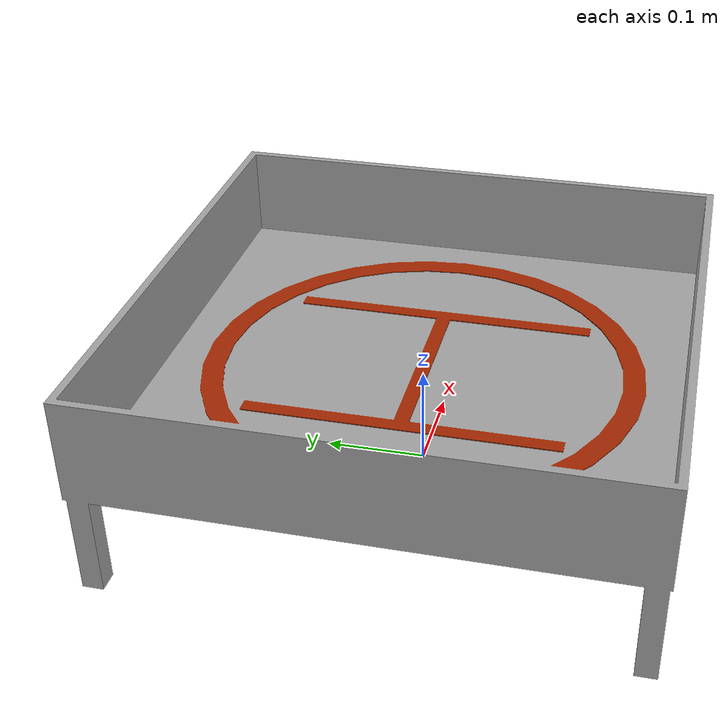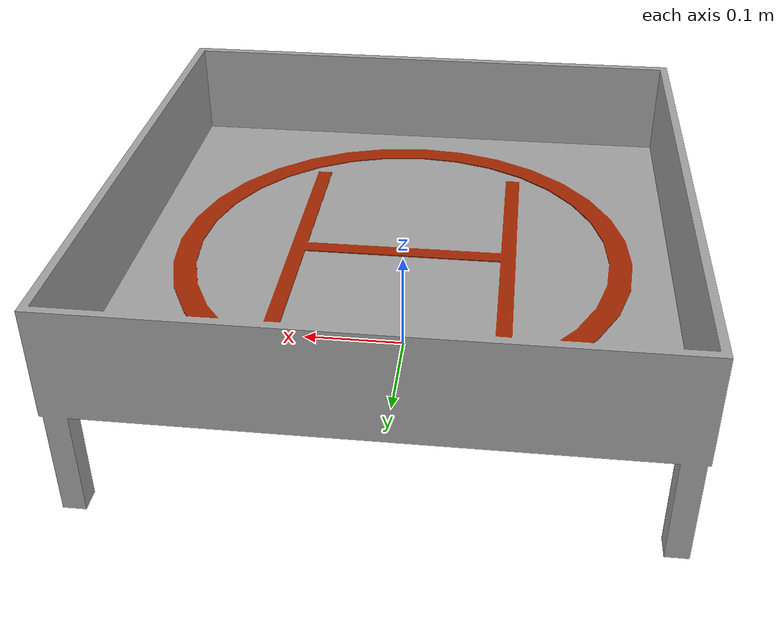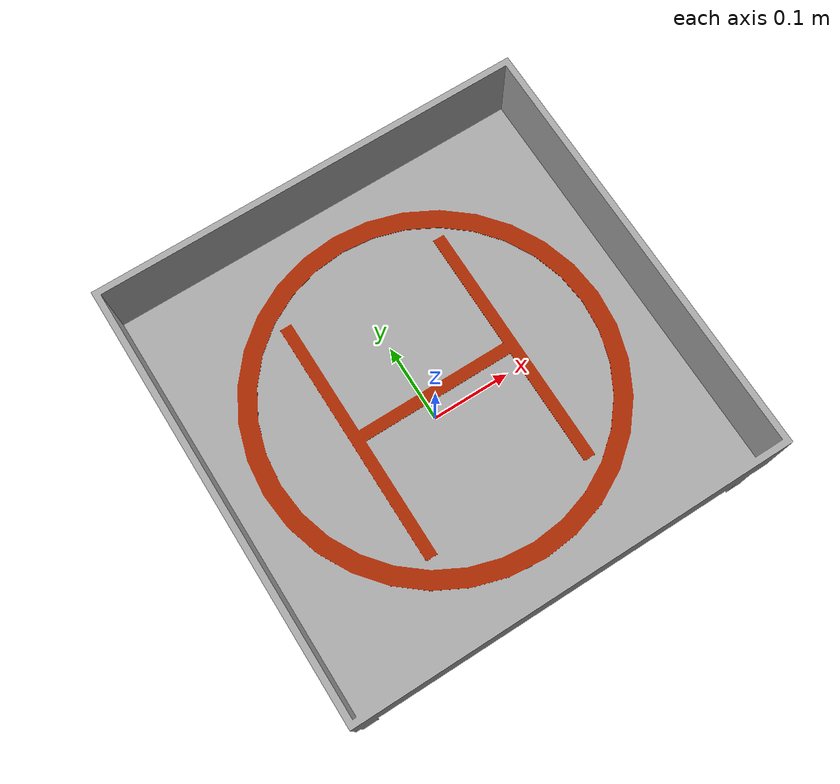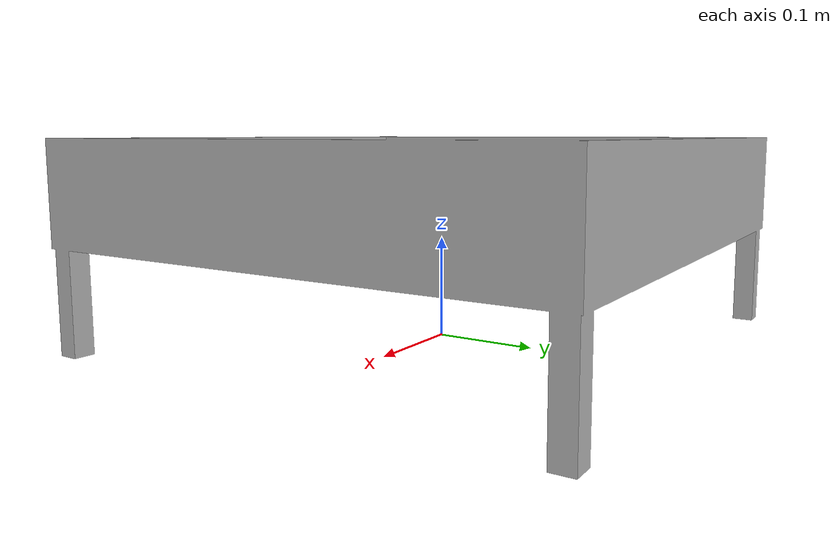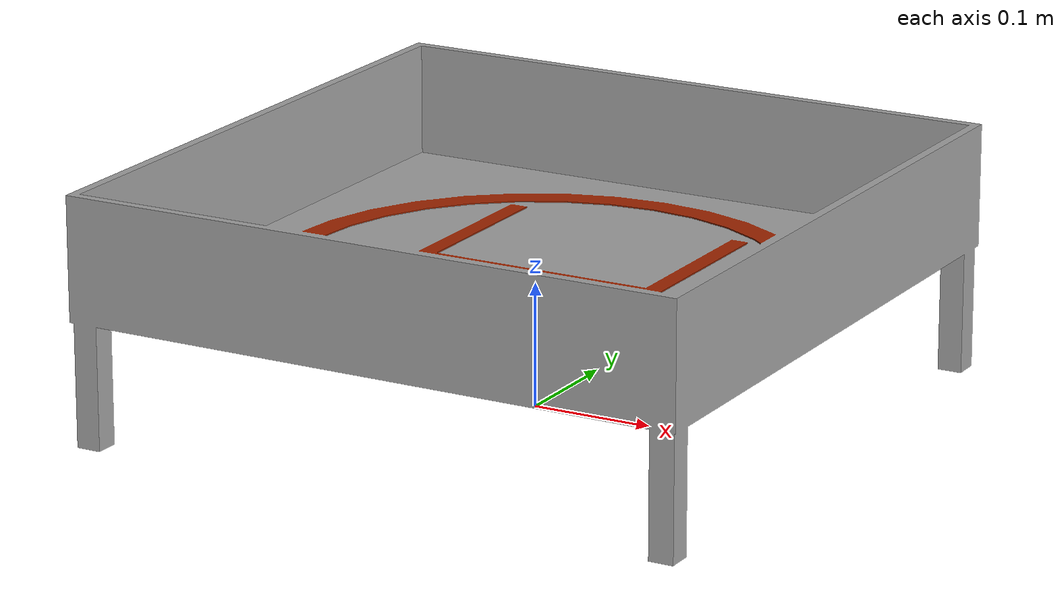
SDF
<?xml version="1.0"?>
<sdf version="1.5">
  <model name="droneponto">
    <static>true</static>
    <link name="droneponto_link">
      <collision name="droneponto_collision">
        <geometry>
          <mesh>
            <uri>model://droneponto/meshes/dronePonto.dae</uri>
          </mesh>
        </geometry>
      </collision>

      <visual name="droneponto_mesh">
        <cast_shadows>true</cast_shadows>
        <geometry>
          <mesh>
            <uri>model://droneponto/meshes/dronePonto.dae</uri>
          </mesh>
        </geometry>
      </visual>
    </link>
  </model>
</sdf>
